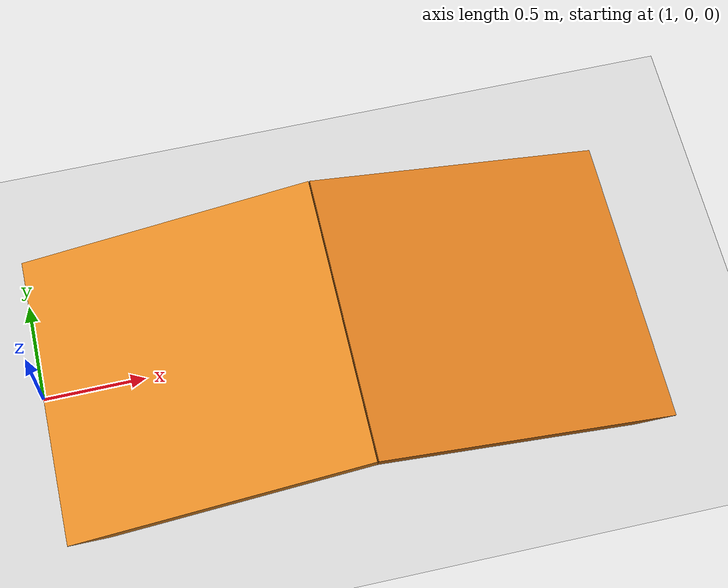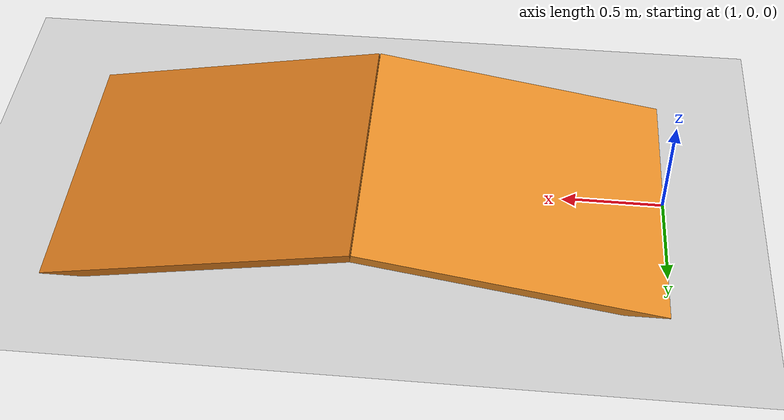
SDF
<?xml version="1.0"?>
<sdf version="1.6">
  <world name="ramp_10deg">
    <gravity>0 0 -9.81</gravity>
    <physics name="default_physics" default="0" type="ode">
      <max_step_size>0.001</max_step_size>
      <real_time_update_rate>1000</real_time_update_rate>
      <ode>
        <solver><type>quick</type><iters>100</iters><sor>1.3</sor><use_dynamic_moi_rescaling>true</use_dynamic_moi_rescaling></solver>
        <constraints><cfm>0.0</cfm><erp>0.2</erp><contact_max_correcting_vel>0.1</contact_max_correcting_vel><contact_surface_layer>0.001</contact_surface_layer></constraints>
      </ode>
    </physics>
    <include><uri>model://ground_plane</uri></include>
    <include><uri>model://sun</uri></include>
    <model name="ramp_10deg_up">
      <static>true</static><pose>1.7386 0.0 0.1105 0 -0.174533 0</pose>
      <link name="link">
        <collision name="collision"><geometry><box><size>1.50 1.50 0.04</size></box></geometry></collision>
        <visual name="visual"><geometry><box><size>1.50 1.50 0.04</size></box></geometry><material><ambient>0.90 0.55 0.15 1</ambient></material></visual>
      </link>
    </model>
    <model name="ramp_10deg_down">
      <static>true</static><pose>3.2158 0.0 0.1105 0 0.174533 0</pose>
      <link name="link">
        <collision name="collision"><geometry><box><size>1.50 1.50 0.04</size></box></geometry></collision>
        <visual name="visual"><geometry><box><size>1.50 1.50 0.04</size></box></geometry><material><ambient>0.80 0.45 0.10 1</ambient></material></visual>
      </link>
    </model>
  </world>
</sdf>
